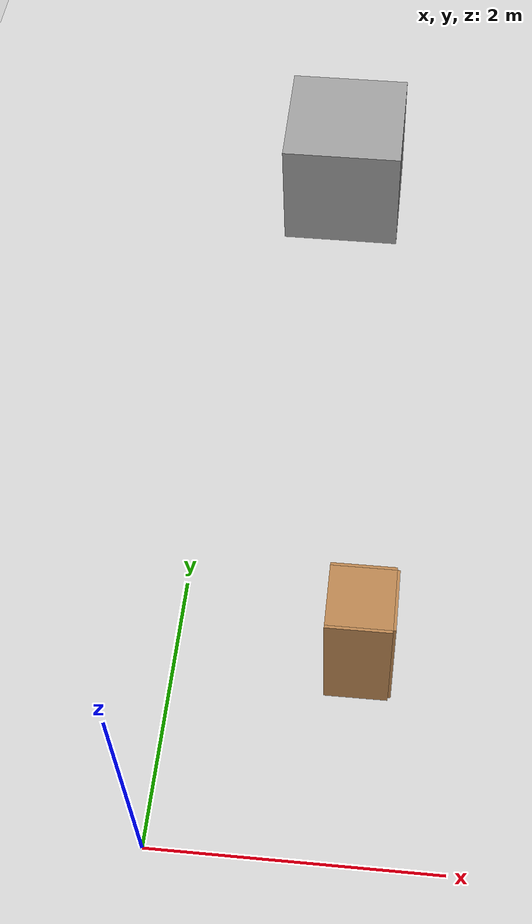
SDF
<sdf version="1.7">
 <world name="default">
  <model name="ground_plane">
   <static>1</static>
   <link name="link">
    <collision name="collision">
     <geometry><plane><normal>0 0 1</normal><size>100 100</size></plane></geometry>
     <surface>
      <contact><collide_bitmask>65535</collide_bitmask></contact>
      <friction><ode><mu>100</mu><mu2>50</mu2></ode></friction>
     </surface>
    </collision>
    <visual name="visual">
     <cast_shadows>0</cast_shadows>
     <geometry><plane><normal>0 0 1</normal><size>100 100</size></plane></geometry>
     <material>
      <script><uri>file://media/materials/scripts/gazebo.material</uri><name>Gazebo/Grey</name></script>
     </material>
    </visual>
   </link>
  </model>
  <model name="unit_box_2">
   <pose>0.834711 6.1006 0.499995 -1e-05 -0 0</pose>
   <link name="link">
    <inertial>
     <mass>1</mass>
     <inertia>
      <ixx>0.166667</ixx>
      <ixy>0</ixy>
      <ixz>0</ixz>
      <iyy>0.166667</iyy>
      <iyz>0</iyz>
      <izz>0.166667</izz>
     </inertia>
    </inertial>
    <collision name="collision"><geometry><box><size>1 1 1</size></box></geometry></collision>
    <visual name="visual">
     <geometry><box><size>1 1 1</size></box></geometry>
     <material>
      <script><name>Gazebo/Grey</name><uri>file://media/materials/scripts/gazebo.material</uri></script>
     </material>
    </visual>
   </link>
  </model>
  <model name="cabinet_clone_clone">
   <static>1</static>
   <link name="cabinet_bottom_plate">
    <inertial>
     <pose>0 0 -1 0 -0 0</pose>
     <inertia><ixx>2.05</ixx><ixy>0</ixy><ixz>0</ixz><iyy>2.05</iyy><iyz>0</iyz><izz>2.05</izz></inertia>
     <mass>25</mass>
    </inertial>
    <collision name="cabinet_bottom_plate_geom">
     <pose>0 0 0.01 0 -0 0</pose>
     <geometry><box><size>0.45 0.45 0.02</size></box></geometry>
    </collision>
    <visual name="cabinet_bottom_plate_geom_visual">
     <pose>0 0 0.01 0 -0 0</pose>
     <geometry><box><size>0.45 0.45 0.02</size></box></geometry>
     <material>
      <script><uri>file://media/materials/scripts/gazebo.material</uri><name>Gazebo/Wood</name></script>
     </material>
    </visual>
    <collision name="cabinet_bottom_plate_geom_cabinet_back_plate">
     <pose>0.235 0 0.51 0 -0 0</pose>
     <geometry><box><size>0.02 0.45 1.02</size></box></geometry>
    </collision>
    <visual name="cabinet_bottom_plate_geom_cabinet_back_plate_visual">
     <pose>0.235 0 0.51 0 -0 0</pose>
     <geometry><box><size>0.02 0.45 1.02</size></box></geometry>
     <material>
      <script><uri>file://media/materials/scripts/gazebo.material</uri><name>Gazebo/Wood</name></script>
     </material>
    </visual>
    <collision name="cabinet_bottom_plate_geom_cabinet_left_plate">
     <pose>0 0.235 0.51 0 -0 0</pose>
     <geometry><box><size>0.45 0.02 1.02</size></box></geometry>
    </collision>
    <visual name="cabinet_bottom_plate_geom_cabinet_left_plate_visual">
     <pose>0 0.235 0.51 0 -0 0</pose>
     <geometry><box><size>0.45 0.02 1.02</size></box></geometry>
     <material>
      <script><uri>file://media/materials/scripts/gazebo.material</uri><name>Gazebo/Wood</name></script>
     </material>
    </visual>
    <collision name="cabinet_bottom_plate_geom_cabinet_middle_plate">
     <pose>0 0 0.51 0 -0 0</pose>
     <geometry><box><size>0.45 0.45 0.02</size></box></geometry>
    </collision>
    <visual name="cabinet_bottom_plate_geom_cabinet_middle_plate_visual">
     <pose>0 0 0.51 0 -0 0</pose>
     <geometry><box><size>0.45 0.45 0.02</size></box></geometry>
     <material>
      <script><uri>file://media/materials/scripts/gazebo.material</uri><name>Gazebo/Wood</name></script>
     </material>
    </visual>
    <collision name="cabinet_bottom_plate_geom_cabinet_right_plate">
     <pose>0 -0.235 0.51 0 -0 0</pose>
     <geometry><box><size>0.45 0.02 1.02</size></box></geometry>
    </collision>
    <visual name="cabinet_bottom_plate_geom_cabinet_right_plate_visual">
     <pose>0 -0.235 0.51 0 -0 0</pose>
     <geometry><box><size>0.45 0.02 1.02</size></box></geometry>
     <material>
      <script><uri>file://media/materials/scripts/gazebo.material</uri><name>Gazebo/Wood</name></script>
     </material>
    </visual>
    <collision name="cabinet_bottom_plate_geom_cabinet_top_plate">
     <pose>0 0 1.01 0 -0 0</pose>
     <geometry><box><size>0.45 0.45 0.02</size></box></geometry>
    </collision>
    <visual name="cabinet_bottom_plate_geom_cabinet_top_plate_visual">
     <pose>0 0 1.01 0 -0 0</pose>
     <geometry><box><size>0.45 0.45 0.02</size></box></geometry>
     <material>
      <script><uri>file://media/materials/scripts/gazebo.material</uri><name>Gazebo/Wood</name></script>
     </material>
    </visual>
   </link>
   <pose>1.31526 1.43782 0 0 -0 0</pose>
  </model>
 </world>
</sdf>
